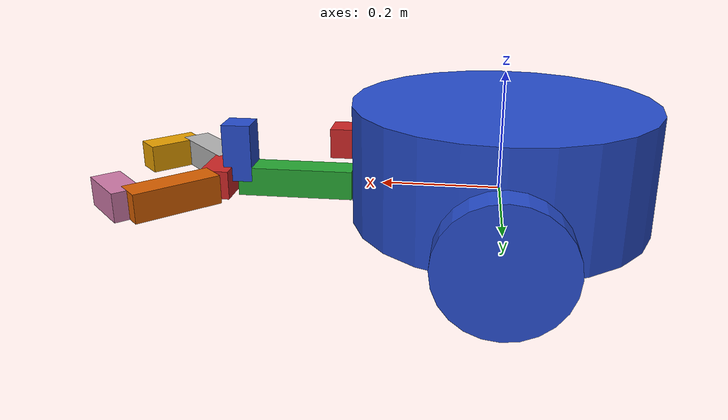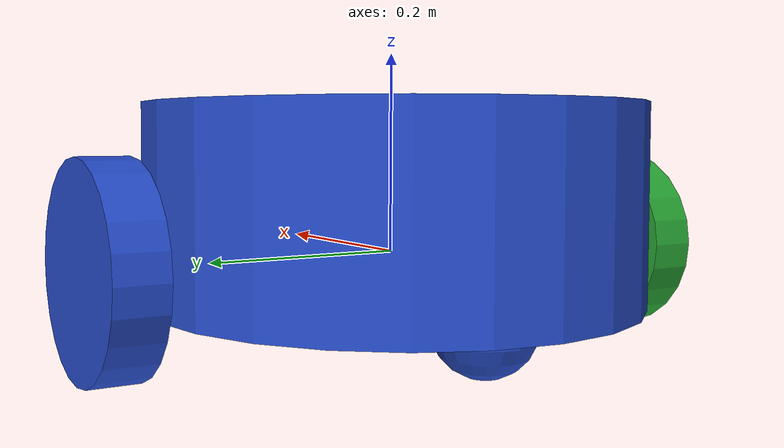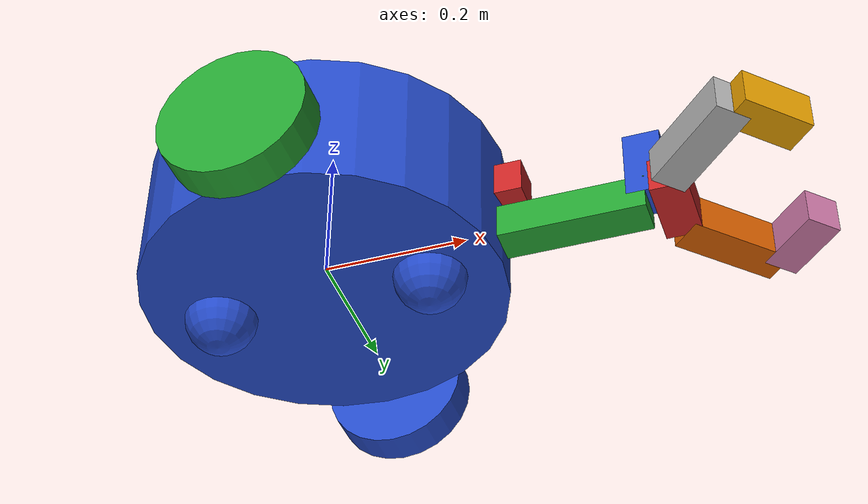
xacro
<?xml version='1.0'?>

<robot name="queenie" xmlns:xacro="http://www.ros.org/wiki/xacro">

  <xacro:include filename="$(find queenie)/src/urdf/queenie.gazebo" />
  <xacro:include filename="$(find queenie)/src/urdf/queenie.trans" />

  <xacro:macro name="default_inertial" params="mass">
    <inertial>
      <mass value="${mass}" />
      <inertia ixx="1.0" ixy="0.0" ixz="0.0" iyy="1.0" iyz="0.0" izz="1.0" />
    </inertial>
  </xacro:macro>

  <xacro:macro name="default_inertial_cuboid" params="mass x_length y_length z_length x:=0 y:=0 z:=0 r:=0 p:=0 yaw:=0">
    <inertial>
      <origin xyz="${x} ${y} ${z}" rpy="${r} ${p} ${yaw}"/>
      <mass value="${mass}" />
      <inertia ixx="${(1/12) * mass * (y_length*y_length + z_length*z_length) * 100}" ixy="0.0" ixz="0.0"
               iyy="${(1/12) * mass * (x_length*x_length + z_length*z_length) * 100}" iyz="0.0"
               izz="${(1/12) * mass * (x_length*x_length + y_length*y_length) * 100}" />
    </inertial>
  </xacro:macro>

  <xacro:macro name="default_inertial_cylinder" params="mass radius height x:=0 y:=0 z:=0 r:=0 p:=0 yaw:=0">
    <inertial>
      <origin xyz="${x} ${y} ${z}" rpy="${r} ${p} ${yaw}"/>
      <mass value="${mass}" />
      <inertia ixx="${(1/12) * mass * (3*radius*radius + height*height) * 100}" ixy="0.0" ixz="0.0"
               iyy="${(1/12) * mass * (3*radius*radius + height*height) * 100}" iyz="0.0"
               izz="${(1/2) * mass * radius*radius * 100}" />
    </inertial>
  </xacro:macro>

  <link name="robot_footprint"></link>

  <joint name="robot_footprint_joint" type="fixed">
    <origin xyz="0 0 0" rpy="0 0 0" />
    <parent link="robot_footprint"/>
    <child link="chassis" />
  </joint>

  <link name='chassis'>
    <xacro:default_inertial_cylinder mass="5" radius="0.25" height="0.2" x="0" y="0" z="0.05" r="0" p="0" yaw="0"/>
    <collision name='collision'>
      <origin xyz="0 0 0.05" rpy=" 0 0 0"/>
      <geometry>
        <cylinder length="0.2" radius="0.25"/>
      </geometry>
    </collision>
    <visual name='chassis_visual'>
      <origin xyz="0 0 0.05" rpy=" 0 0 0"/>
      <geometry>
       <cylinder length="0.2" radius="0.25"/>
      </geometry>
    </visual>
    <collision name='back_caster_collision'>
      <origin xyz="-0.15 0 -0.05" rpy=" 0 0 0"/>
      <geometry>
        <sphere radius="0.0499"/>
      </geometry>
    </collision>
    <visual name='back_caster_visual'>
      <origin xyz="-0.15 0 -0.05" rpy=" 0 0 0"/>
      <geometry>
        <sphere radius="0.05"/>
      </geometry>
    </visual>
    <collision name='front_caster_collision'>
      <origin xyz="0.15 0 -0.05" rpy=" 0 0 0"/>
      <geometry>
        <sphere radius="0.0499"/>
      </geometry>
    </collision>
    <visual name='front_caster_visual'>
      <origin xyz="0.15 0 -0.05" rpy=" 0 0 0"/>
      <geometry>
        <sphere radius="0.05"/>
      </geometry>
    </visual>
  </link>

  <joint name="gripper_extension" type="prismatic">
    <parent link="chassis"/>
    <child link="gripper_pole"/>
    <limit effort="1000.0" lower="-0.13" upper="0" velocity="0.5"/>
    <origin rpy="0 0 0" xyz="0.25 0 0"/>
  </joint>

  <link name="gripper_pole">
    <visual>
      <geometry>
        <box size="0.2 0.05 0.05"/>
      </geometry>
      <origin rpy="0 ${0} 0 " xyz="0.1 0 0"/>
    </visual>
    <collision>
      <geometry>
         <box size="0.2 0.05 0.05"/>
      </geometry>
      <origin rpy="0 ${0} 0 " xyz="0.1 0 0"/>
    </collision>
    <xacro:default_inertial_cuboid mass="0.01" x_length="0.2" y_length="0.05" z_length="0.05" x="0.1" y="0" z="0" r="0" p="0" yaw="0"/>
  </link>

  <joint name="gripper_extension_vertical" type="fixed">
    <parent link="gripper_pole"/>
    <child link="gripper_pole_vertical"/>
    <origin rpy="0 0 0" xyz="0.2 0 0"/>
  </joint>

  <link name="gripper_pole_vertical">
    <visual>
      <geometry>
        <box size="0.05 0.05 0.1"/>
      </geometry>
      <origin rpy="0 0 0 " xyz="0 0 0.05"/>
    </visual>
    <collision>
      <geometry>
        <box size="0.05 0.05 0.1"/>
      </geometry>
      <origin rpy="0 0 0 " xyz="0 0 0.05"/>
    </collision>
    <xacro:default_inertial_cuboid mass="0.01" x_length="0.05" y_length="0.05" z_length="0.1" x="0" y="0" z="0.05" r="0" p="0" yaw="0"/>
  </link>

  <joint name="palm_riser" type="prismatic">
    <parent link="gripper_pole_vertical"/>
    <child link="palm"/>
    <limit effort="1000.0" lower="0" upper="0.09" velocity="0.5"/>
    <origin rpy="0 0 0" xyz="0.01 0 0"/>
    <axis xyz="0 0 1"/>
  </joint>

  <link name="palm">
      <collision name="collision">
        <geometry>
          <box size="0.05 0.1 0.05"/>
        </geometry>
        <origin rpy="0 0 0 " xyz="0.025 0 0"/>
      </collision>
      <visual name="visual">
        <geometry>
          <box size="0.05 0.1 0.05"/>
        </geometry>
        <origin rpy="0 0 0 " xyz="0.025 0 0"/>
      </visual>
      <xacro:default_inertial_cuboid mass="0.01" x_length="0.05" y_length="0.1" z_length="0.05" x="0.025" y="0" z="0"/>
  </link>

  <joint name="palm_left_finger" type="revolute">
    <child link="left_finger"/>
    <parent link="palm"/>
    <limit effort="1000.0" lower="-0.4" upper="0.4" velocity="0.5"/>
    <origin rpy="0 0 ${-pi/4}" xyz="0.025 0.05 0"/>
    <axis xyz="0 0 -1"/>
  </joint>

  <link name="left_finger">
    <collision name="collision">
      <geometry>
        <box size="0.05 0.15 0.05"/>
      </geometry>
      <origin xyz="0 0.075 0" rpy="0 0 0 "/>
    </collision>
    <visual name="visual">
      <geometry>
        <box size="0.05 0.15 0.05"/>
      </geometry>
      <origin xyz="0 0.075 0" rpy="0 0 0 "/>
    </visual>
    <xacro:default_inertial_cuboid mass="0.02" x_length="0.05" y_length="0.15" z_length="0.05" x="0" y="0.075" z="0"/>
  </link>

  <joint name="left_finger_to_tip" type="revolute">
    <child link="left_finger_tip"/>
    <parent link="left_finger"/>
    <limit effort="1000.0" lower="-0.4" upper="0.4" velocity="0.5"/>
    <origin rpy="0 0 ${-pi/2}" xyz="0 0.15 0"/>
    <axis xyz="0 0 -1"/>
  </joint>

  <link name="left_finger_tip">
      <collision>
          <geometry>
              <box size="0.05 0.1 0.05"/>
          </geometry>
          <origin rpy="0 0 0" xyz="0 0.05 0"/>
      </collision>
      <visual name="visual">
          <geometry>
              <box size="0.05 0.1 0.05"/>
          </geometry>
          <origin rpy="0 0 0" xyz="0 0.05 0"/>
      </visual>
      <xacro:default_inertial_cuboid mass="0.01" x_length="0.05" y_length="0.1" z_length="0.05" x="0" y="0.05" z="0"/>
  </link>

  <joint name="palm_right_finger" type="revolute">
    <child link="right_finger"/>
    <parent link="palm"/>
    <limit effort="1000.0" lower="-0.4" upper="0.4" velocity="0.5"/>
    <origin rpy="0 0 ${pi/4}" xyz="0.025 -0.05 0"/>
    <axis xyz="0 0 1"/>
  </joint>

  <link name="right_finger">
    <collision name="collision">
      <geometry>
        <box size="0.05 0.15 0.05"/>
      </geometry>
      <origin xyz="0 -0.075 0" rpy="0 0 0 "/>
    </collision>
    <visual name="visual">
      <geometry>
        <box size="0.05 0.15 0.05"/>
      </geometry>
      <origin xyz="0 -0.075 0" rpy="0 0 0 "/>
    </visual>
    <xacro:default_inertial_cuboid mass="0.02" x_length="0.05" y_length="0.15" z_length="0.05" x="0" y="-0.075" z="0"/>
  </link>

  <joint name="right_finger_to_tip" type="revolute">
    <child link="right_finger_tip"/>
    <parent link="right_finger"/>
    <limit effort="1000.0" lower="-0.4" upper="0.4" velocity="0.5"/>
    <origin rpy="0 0 ${pi/2}" xyz="0 -0.15 0"/>
    <axis xyz="0 0 1"/>
  </joint>

  <link name="right_finger_tip">
      <collision>
          <geometry>
              <box size="0.05 0.1 0.05"/>
          </geometry>
          <origin rpy="0 0 0" xyz="0 -0.05 0"/>
      </collision>
      <visual name="visual">
          <geometry>
              <box size="0.05 0.1 0.05"/>
          </geometry>
          <origin rpy="0 0 0" xyz="0 -0.05 0"/>
      </visual>
      <xacro:default_inertial_cuboid mass="0.01" x_length="0.05" y_length="0.1" z_length="0.05" x="0" y="-0.05" z="0"/>
  </link>

  <joint type="continuous" name="left_wheel_hinge">
    <origin xyz="0 0.30 0" rpy="0 0 0" />
    <parent link="chassis"/>
    <child link="left_wheel" />
    <axis xyz="0 1 0" rpy="0 0 0" />
    <limit effort="10000" velocity="1000" />
    <dynamics damping="1.0" friction="1.0" />
  </joint>

  <link name="left_wheel">
    <xacro:default_inertial_cylinder mass="2" radius="0.1" height="0.05" x="0" y="0" z="0" r="0" p="${pi/2}" yaw="${pi/2}"/>

    <collision>
      <origin xyz="0 0 0" rpy="0 1.5707 1.5707"/>
      <geometry>
        <cylinder radius="0.1" length="0.05"/>
      </geometry>
    </collision>

    <visual>
      <origin xyz="0 0 0" rpy="0 1.5707 1.5707"/>
      <geometry>
        <cylinder radius="0.1" length="0.05"/>
      </geometry>
    </visual>

  </link>

  <joint type="continuous" name="right_wheel_hinge">
    <origin xyz="0 -0.30 0" rpy="0 0 0" />
    <parent link="chassis"/>
    <child link="right_wheel" />
    <axis xyz="0 1 0" rpy="0 0 0" />
    <limit effort="10000" velocity="1000" />
    <dynamics damping="1.0" friction="1.0" />
  </joint>

  <link name="right_wheel">
    <xacro:default_inertial_cylinder mass="2" radius="0.1" height="0.05" x="0" y="0" z="0" r="0" p="${pi/2}" yaw="${pi/2}"/>

    <collision>
      <origin xyz="0 0 0" rpy="0 1.5707 1.5707"/>
      <geometry>
        <cylinder radius="0.1" length="0.05"/>
      </geometry>
    </collision>

    <visual>
      <origin xyz="0 0 0" rpy="0 1.5707 1.5707"/>
      <geometry>
        <cylinder radius="0.1" length="0.05"/>
      </geometry>
    </visual>

  </link>

  <joint name="camera_joint" type="fixed">
    <origin xyz="0.26 0 .075" rpy="0 0 0" />
    <parent link="chassis"/>
    <child link="camera" />
    <axis xyz="0 1 0"/>
  </joint>

  <link name="camera">
      <xacro:default_inertial_cuboid mass="0.01" x_length="0.05" y_length="0.05" z_length="0.05" x="0" y="0" z="0"/>
      <collision>
        <origin xyz="0 0 0" rpy="0 0 0"/>
        <geometry>
          <box size="0.05 0.05 0.05"/>
        </geometry>
      </collision>

      <visual>
        <origin xyz="0 0 0" rpy="0 0 0"/>
        <geometry>
          <box size="0.05 0.05 0.05"/>
        </geometry>
      </visual>
    </link>

</robot>
